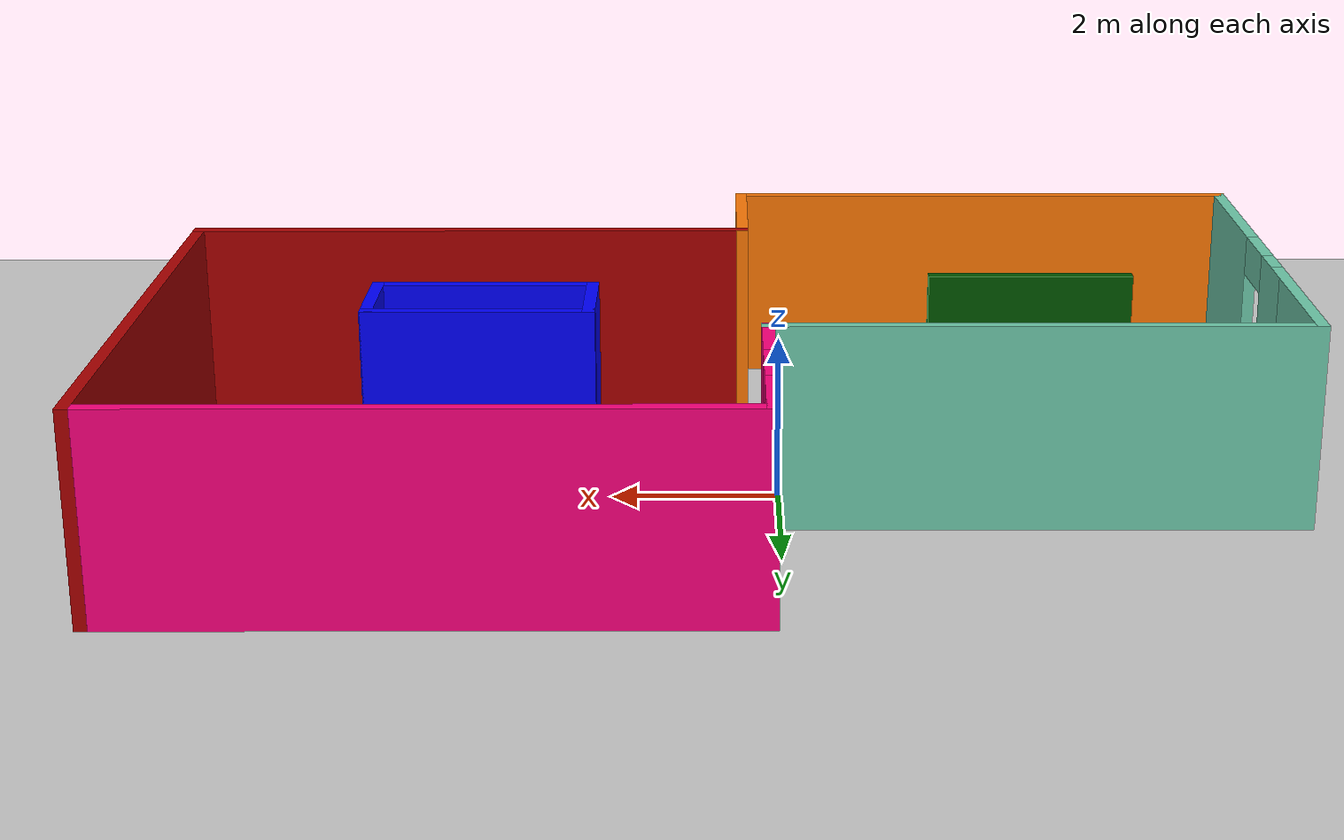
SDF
<sdf version="1.6">
 <world name="default">
  <light name="sun" type="directional">
   <pose>0 0 10 0 -0 0</pose>
   <diffuse>0.8 0.8 0.8 1</diffuse>
   <specular>0.2 0.2 0.2 1</specular>
   <attenuation>
    <range>1000</range>
    <constant>0.9</constant>
    <linear>0.01</linear>
    <quadratic>0.001</quadratic>
   </attenuation>
   <direction>-0.5 0.1 -0.9</direction>
  </light>
  <model name="ground_plane">
   <static>1</static>
   <link name="link">
    <collision name="collision">
     <geometry><plane><normal>0 0 1</normal><size>100 100</size></plane></geometry>
     <surface><friction><ode><mu>100</mu><mu2>50</mu2></ode></friction></surface>
    </collision>
    <visual name="visual">
     <cast_shadows>0</cast_shadows>
     <geometry><plane><normal>0 0 1</normal><size>100 100</size></plane></geometry>
     <material>
      <script><uri>file://media/materials/scripts/gazebo.material</uri><name>Gazebo/Grey</name></script>
     </material>
    </visual>
   </link>
  </model>
  <gravity>0 0 -9.8</gravity>
  <magnetic_field>6e-06 2.3e-05 -4.2e-05</magnetic_field>
  <atmosphere type="adiabatic"/>
  <physics name="default_physics" default="0" type="ode">
   <max_step_size>0.001</max_step_size>
   <real_time_factor>1</real_time_factor>
   <real_time_update_rate>1000</real_time_update_rate>
  </physics>
  <scene><ambient>0.4 0.4 0.4 1</ambient><background>0.7 0.7 0.7 1</background><shadows>1</shadows></scene>
  <spherical_coordinates>
   <surface_model>EARTH_WGS84</surface_model>
   <latitude_deg>0</latitude_deg>
   <longitude_deg>0</longitude_deg>
   <elevation>0</elevation>
   <heading_deg>0</heading_deg>
  </spherical_coordinates>
  <model name="small_utopia">
   <pose>0.65 -0.595 0 0 -0 0</pose>
   <link name="Wall_0">
    <pose>-6.85 -2.425 0 0 0 -1.5708</pose>
    <visual name="Wall_0_Visual_0">
     <pose>-1.61241 0 1.25 0 -0 0</pose>
     <geometry><box><size>1.02519 0.15 2.5</size></box></geometry>
     <material>
      <script><uri>file://media/materials/scripts/gazebo.material</uri><name>Gazebo/Grey</name></script>
      <ambient>0.435294 0.796078 0.67451 1</ambient>
     </material>
     <meta><layer>0</layer></meta>
    </visual>
    <collision name="Wall_0_Collision_0">
     <geometry><box><size>1.02519 0.15 2.5</size></box></geometry>
     <pose>-1.61241 0 1.25 0 -0 0</pose>
    </collision>
    <visual name="Wall_0_Visual_1">
     <pose>0.962595 0 1.25 0 -0 0</pose>
     <geometry><box><size>2.32481 0.15 2.5</size></box></geometry>
     <material>
      <script><uri>file://media/materials/scripts/gazebo.material</uri><name>Gazebo/Grey</name></script>
      <ambient>0.435294 0.796078 0.67451 1</ambient>
     </material>
     <meta><layer>0</layer></meta>
    </visual>
    <collision name="Wall_0_Collision_1">
     <geometry><box><size>2.32481 0.15 2.5</size></box></geometry>
     <pose>0.962595 0 1.25 0 -0 0</pose>
    </collision>
    <visual name="Wall_0_Visual_2">
     <pose>-0.64981 0 2.25 0 -0 0</pose>
     <geometry><box><size>0.9 0.15 0.5</size></box></geometry>
     <material>
      <script><uri>file://media/materials/scripts/gazebo.material</uri><name>Gazebo/Grey</name></script>
      <ambient>0.435294 0.796078 0.67451 1</ambient>
     </material>
     <meta><layer>0</layer></meta>
    </visual>
    <collision name="Wall_0_Collision_2">
     <geometry><box><size>0.9 0.15 0.5</size></box></geometry>
     <pose>-0.64981 0 2.25 0 -0 0</pose>
    </collision>
   </link>
   <link name="Wall_1">
    <collision name="Wall_1_Collision">
     <geometry><box><size>6.75 0.15 2.5</size></box></geometry>
     <pose>0 0 1.25 0 -0 0</pose>
    </collision>
    <visual name="Wall_1_Visual">
     <pose>0 0 1.25 0 -0 0</pose>
     <geometry><box><size>6.75 0.15 2.5</size></box></geometry>
     <material>
      <script><uri>file://media/materials/scripts/gazebo.material</uri><name>Gazebo/Grey</name></script>
      <ambient>0.996078 0.47451 0.0196078 1</ambient>
     </material>
     <meta><layer>0</layer></meta>
    </visual>
    <pose>-3.55 -4.475 0 0 -0 0</pose>
   </link>
   <link name="Wall_10">
    <collision name="Wall_10_Collision">
     <geometry><box><size>2.5 0.15 2.5</size></box></geometry>
     <pose>0 0 1.25 0 -0 0</pose>
    </collision>
    <visual name="Wall_10_Visual">
     <pose>0 0 1.25 0 -0 0</pose>
     <geometry><box><size>2.5 0.15 2.5</size></box></geometry>
     <material>
      <script><uri>file://media/materials/scripts/gazebo.material</uri><name>Gazebo/Grey</name></script>
      <ambient>0 0.333333 0 1</ambient>
     </material>
     <meta><layer>0</layer></meta>
    </visual>
    <pose>-3.7533 -0.433615 0 0 -0 3.14159</pose>
   </link>
   <link name="Wall_12">
    <collision name="Wall_12_Collision">
     <geometry><box><size>2.75 0.15 2.5</size></box></geometry>
     <pose>0 0 1.25 0 -0 0</pose>
    </collision>
    <visual name="Wall_12_Visual">
     <pose>0 0 1.25 0 -0 0</pose>
     <geometry><box><size>2.75 0.15 2.5</size></box></geometry>
     <material>
      <script><uri>file://media/materials/scripts/gazebo.material</uri><name>Gazebo/Grey</name></script>
      <ambient>0 0 1 1</ambient>
     </material>
     <meta><layer>0</layer></meta>
    </visual>
    <pose>2.88521 -0.063525 0 0 -0 0</pose>
   </link>
   <link name="Wall_14">
    <collision name="Wall_14_Collision">
     <geometry><box><size>1.25 0.15 2.5</size></box></geometry>
     <pose>0 0 1.25 0 -0 0</pose>
    </collision>
    <visual name="Wall_14_Visual">
     <pose>0 0 1.25 0 -0 0</pose>
     <geometry><box><size>1.25 0.15 2.5</size></box></geometry>
     <material>
      <script><uri>file://media/materials/scripts/gazebo.material</uri><name>Gazebo/Grey</name></script>
      <ambient>0 0 1 1</ambient>
     </material>
     <meta><layer>0</layer></meta>
    </visual>
    <pose>4.18521 0.486475 0 0 -0 1.5708</pose>
   </link>
   <link name="Wall_15">
    <collision name="Wall_15_Collision">
     <geometry><box><size>2.75 0.15 2.5</size></box></geometry>
     <pose>0 0 1.25 0 -0 0</pose>
    </collision>
    <visual name="Wall_15_Visual">
     <pose>0 0 1.25 0 -0 0</pose>
     <geometry><box><size>2.75 0.15 2.5</size></box></geometry>
     <material>
      <script><uri>file://media/materials/scripts/gazebo.material</uri><name>Gazebo/Grey</name></script>
      <ambient>0 0 1 1</ambient>
     </material>
     <meta><layer>0</layer></meta>
    </visual>
    <pose>2.88521 1.03648 0 0 -0 3.14159</pose>
   </link>
   <link name="Wall_16">
    <collision name="Wall_16_Collision">
     <geometry><box><size>1.25 0.15 2.5</size></box></geometry>
     <pose>0 0 1.25 0 -0 0</pose>
    </collision>
    <visual name="Wall_16_Visual">
     <pose>0 0 1.25 0 -0 0</pose>
     <geometry><box><size>1.25 0.15 2.5</size></box></geometry>
     <material>
      <script><uri>file://media/materials/scripts/gazebo.material</uri><name>Gazebo/Grey</name></script>
      <ambient>0 0 1 1</ambient>
     </material>
     <meta><layer>0</layer></meta>
    </visual>
    <pose>1.58521 0.486475 0 0 0 -1.5708</pose>
   </link>
   <link name="Wall_2">
    <collision name="Wall_2_Collision">
     <geometry><box><size>2 0.15 2.5</size></box></geometry>
     <pose>0 0 1.25 0 -0 0</pose>
    </collision>
    <visual name="Wall_2_Visual">
     <pose>0 0 1.25 0 -0 0</pose>
     <geometry><box><size>2 0.15 2.5</size></box></geometry>
     <material>
      <script><uri>file://media/materials/scripts/gazebo.material</uri><name>Gazebo/Grey</name></script>
      <ambient>0.996078 0.47451 0.0196078 1</ambient>
     </material>
     <meta><layer>0</layer></meta>
    </visual>
    <pose>-0.25 -3.55 0 0 -0 1.5708</pose>
   </link>
   <link name="Wall_3">
    <collision name="Wall_3_Collision">
     <geometry><box><size>7.25 0.15 2.5</size></box></geometry>
     <pose>0 0 1.25 0 -0 0</pose>
    </collision>
    <visual name="Wall_3_Visual">
     <pose>0 0 1.25 0 -0 0</pose>
     <geometry><box><size>7.25 0.15 2.5</size></box></geometry>
     <material>
      <script><uri>file://media/materials/scripts/gazebo.material</uri><name>Gazebo/Grey</name></script>
      <ambient>0.666667 0 0 1</ambient>
     </material>
     <meta><layer>0</layer></meta>
    </visual>
    <pose>3.3 -2.625 0 0 -0 0</pose>
   </link>
   <link name="Wall_4">
    <collision name="Wall_4_Collision">
     <geometry><box><size>7.25 0.15 2.5</size></box></geometry>
     <pose>0 0 1.25 0 -0 0</pose>
    </collision>
    <visual name="Wall_4_Visual">
     <pose>0 0 1.25 0 -0 0</pose>
     <geometry><box><size>7.25 0.15 2.5</size></box></geometry>
     <material>
      <script><uri>file://media/materials/scripts/gazebo.material</uri><name>Gazebo/Grey</name></script>
      <ambient>0.666667 0 0 1</ambient>
     </material>
     <meta><layer>0</layer></meta>
    </visual>
    <pose>6.85 0.925 0 0 -0 1.5708</pose>
   </link>
   <link name="Wall_5">
    <collision name="Wall_5_Collision">
     <geometry><box><size>7.5 0.15 2.5</size></box></geometry>
     <pose>0 0 1.25 0 -0 0</pose>
    </collision>
    <visual name="Wall_5_Visual">
     <pose>0 0 1.25 0 -0 0</pose>
     <geometry><box><size>7.5 0.15 2.5</size></box></geometry>
     <material>
      <script><uri>file://media/materials/scripts/gazebo.material</uri><name>Gazebo/Grey</name></script>
      <ambient>1 0 0.498039 1</ambient>
     </material>
     <meta><layer>0</layer></meta>
    </visual>
    <pose>3.175 4.475 0 0 -0 3.14159</pose>
   </link>
   <link name="Wall_6">
    <pose>-0.5 3.05 0 0 0 -1.5708</pose>
    <visual name="Wall_6_Visual_0">
     <pose>-0.956423 0 1.25 0 -0 0</pose>
     <geometry><box><size>1.08715 0.15 2.5</size></box></geometry>
     <material>
      <script><uri>file://media/materials/scripts/gazebo.material</uri><name>Gazebo/Grey</name></script>
      <ambient>1 0 0.498039 1</ambient>
     </material>
     <meta><layer>0</layer></meta>
    </visual>
    <collision name="Wall_6_Collision_0">
     <geometry><box><size>1.08715 0.15 2.5</size></box></geometry>
     <pose>-0.956423 0 1.25 0 -0 0</pose>
    </collision>
    <visual name="Wall_6_Visual_1">
     <pose>0.993577 0 1.25 0 -0 0</pose>
     <geometry><box><size>1.01285 0.15 2.5</size></box></geometry>
     <material>
      <script><uri>file://media/materials/scripts/gazebo.material</uri><name>Gazebo/Grey</name></script>
      <ambient>1 0 0.498039 1</ambient>
     </material>
     <meta><layer>0</layer></meta>
    </visual>
    <collision name="Wall_6_Collision_1">
     <geometry><box><size>1.01285 0.15 2.5</size></box></geometry>
     <pose>0.993577 0 1.25 0 -0 0</pose>
    </collision>
    <visual name="Wall_6_Visual_2">
     <pose>0.037154 0 2.25 0 -0 0</pose>
     <geometry><box><size>0.9 0.15 0.5</size></box></geometry>
     <material>
      <script><uri>file://media/materials/scripts/gazebo.material</uri><name>Gazebo/Grey</name></script>
      <ambient>1 0 0.498039 1</ambient>
     </material>
     <meta><layer>0</layer></meta>
    </visual>
    <collision name="Wall_6_Collision_2">
     <geometry><box><size>0.9 0.15 0.5</size></box></geometry>
     <pose>0.037154 0 2.25 0 -0 0</pose>
    </collision>
   </link>
   <link name="Wall_7">
    <collision name="Wall_7_Collision">
     <geometry><box><size>6.5 0.15 2.5</size></box></geometry>
     <pose>0 0 1.25 0 -0 0</pose>
    </collision>
    <visual name="Wall_7_Visual">
     <pose>0 0 1.25 0 -0 0</pose>
     <geometry><box><size>6.5 0.15 2.5</size></box></geometry>
     <material>
      <script><uri>file://media/materials/scripts/gazebo.material</uri><name>Gazebo/Grey</name></script>
      <ambient>0.435294 0.796078 0.67451 1</ambient>
     </material>
     <meta><layer>0</layer></meta>
    </visual>
    <pose>-3.675 1.625 0 0 -0 3.14159</pose>
   </link>
   <link name="Wall_8">
    <collision name="Wall_8_Collision">
     <geometry><box><size>2.5 0.15 2.5</size></box></geometry>
     <pose>0 0 1.25 0 -0 0</pose>
    </collision>
    <visual name="Wall_8_Visual">
     <pose>0 0 1.25 0 -0 0</pose>
     <geometry><box><size>2.5 0.15 2.5</size></box></geometry>
     <material>
      <script><uri>file://media/materials/scripts/gazebo.material</uri><name>Gazebo/Grey</name></script>
      <ambient>0.435294 0.796078 0.67451 1</ambient>
     </material>
     <meta><layer>0</layer></meta>
    </visual>
    <pose>-6.85 0.45 0 0 0 -1.5708</pose>
   </link>
   <static>1</static>
  </model>
 </world>
</sdf>
